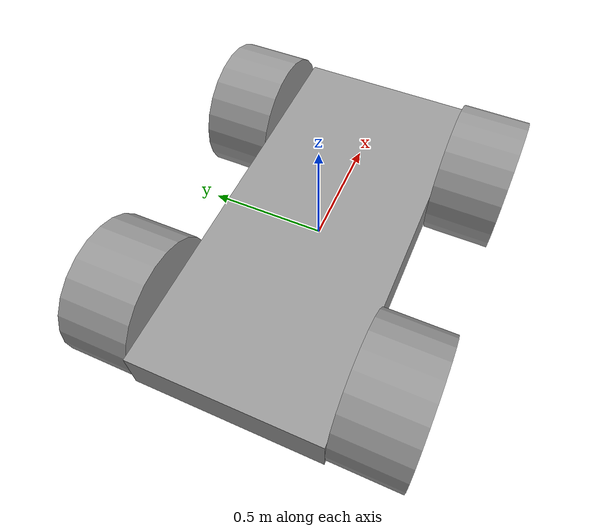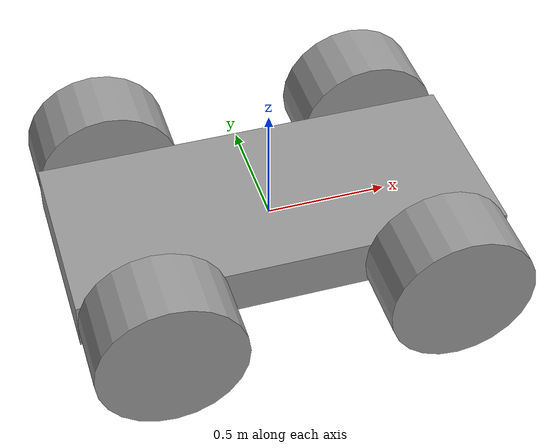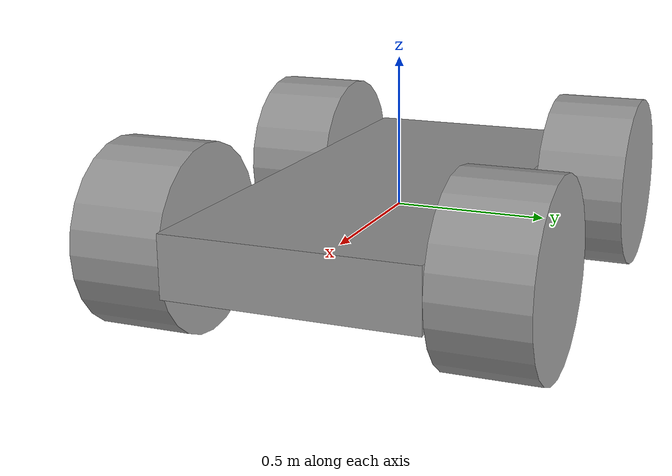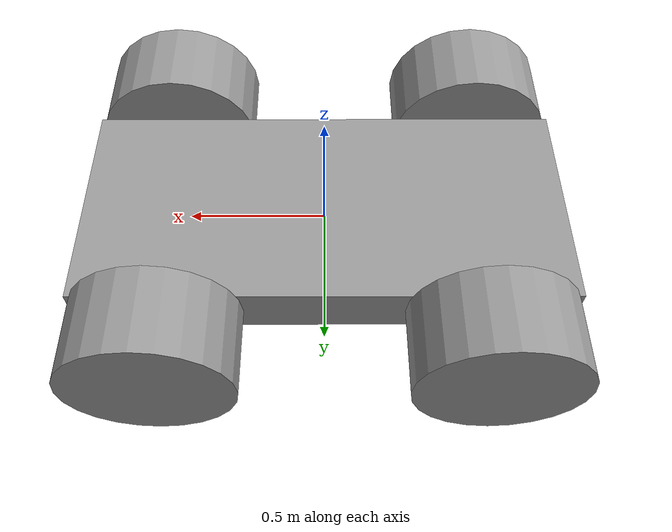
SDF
<?xml version='1.0'?>
<sdf version='1.7'>
  <model name='fourwheelsimplevehicle'>
    <link name='link_5'>
      <inertial>
        <mass>7.08275</mass>
        <inertia>
          <ixx>0.405716</ixx>
          <ixy>0</ixy>
          <ixz>0</ixz>
          <iyy>1.85289</iyy>
          <iyz>0</iyz>
          <izz>2.21139</izz>
        </inertia>
        <pose>0 0 0 0 -0 0</pose>
      </inertial>
      <pose>1e-06 -0 0 0 -0 0</pose>
      <gravity>1</gravity>
      <self_collide>0</self_collide>
      <kinematic>0</kinematic>
      <enable_wind>0</enable_wind>
      <visual name='visual'>
        <pose>0 0 0 0 -0 0</pose>
        <geometry>
          <box>
            <size>1.76047 0.804604 0.2</size>
          </box>
        </geometry>
        <material>
          <lighting>1</lighting>
          <script>
            <uri>file://media/materials/scripts/gazebo.material</uri>
            <name>Gazebo/Grey</name>
          </script>
          <shader type='pixel'>
            <normal_map>__default__</normal_map>
          </shader>
          <ambient>0.3 0.3 0.3 1</ambient>
          <diffuse>0.7 0.7 0.7 1</diffuse>
          <specular>0.01 0.01 0.01 1</specular>
          <emissive>0 0 0 1</emissive>
        </material>
        <transparency>0</transparency>
        <cast_shadows>1</cast_shadows>
      </visual>
      <collision name='collision'>
        <laser_retro>0</laser_retro>
        <max_contacts>10</max_contacts>
        <pose>0 0 0 0 -0 0</pose>
        <geometry>
          <box>
            <size>1.76047 0.804604 0.2</size>
          </box>
        </geometry>
        <surface>
          <friction>
            <ode>
              <mu>1</mu>
              <mu2>1</mu2>
              <fdir1>0 0 0</fdir1>
              <slip1>0</slip1>
              <slip2>0</slip2>
            </ode>
            <torsional>
              <coefficient>1</coefficient>
              <patch_radius>0</patch_radius>
              <surface_radius>0</surface_radius>
              <use_patch_radius>1</use_patch_radius>
              <ode>
                <slip>0</slip>
              </ode>
            </torsional>
          </friction>
          <bounce>
            <restitution_coefficient>0</restitution_coefficient>
            <threshold>1e+06</threshold>
          </bounce>
          <contact>
            <collide_without_contact>0</collide_without_contact>
            <collide_without_contact_bitmask>1</collide_without_contact_bitmask>
            <collide_bitmask>1</collide_bitmask>
            <ode>
              <soft_cfm>0</soft_cfm>
              <soft_erp>0.2</soft_erp>
              <kp>1e+13</kp>
              <kd>1</kd>
              <max_vel>0.01</max_vel>
              <min_depth>0</min_depth>
            </ode>
            <bullet>
              <split_impulse>1</split_impulse>
              <split_impulse_penetration_threshold>-0.01</split_impulse_penetration_threshold>
              <soft_cfm>0</soft_cfm>
              <soft_erp>0.2</soft_erp>
              <kp>1e+13</kp>
              <kd>1</kd>
            </bullet>
          </contact>
        </surface>
      </collision>
    </link>
    <link name='link_6'>
      <inertial>
        <mass>1</mass>
        <inertia>
          <ixx>0.145833</ixx>
          <ixy>0</ixy>
          <ixz>0</ixz>
          <iyy>0.145833</iyy>
          <iyz>0</iyz>
          <izz>0.125</izz>
        </inertia>
        <pose>0 0 0 0 -0 0</pose>
      </inertial>
      <pose>-0.580238 0.552351 0 1.57096 -0 0</pose>
      <gravity>1</gravity>
      <self_collide>0</self_collide>
      <kinematic>0</kinematic>
      <enable_wind>0</enable_wind>
      <visual name='visual'>
        <pose>0 0 0 0 -0 0</pose>
        <geometry>
          <cylinder>
            <radius>0.3</radius>
            <length>0.3</length>
          </cylinder>
        </geometry>
        <material>
          <lighting>1</lighting>
          <script>
            <uri>file://media/materials/scripts/gazebo.material</uri>
            <name>Gazebo/Grey</name>
          </script>
          <shader type='pixel'>
            <normal_map>__default__</normal_map>
          </shader>
          <ambient>0.3 0.3 0.3 1</ambient>
          <diffuse>0.7 0.7 0.7 1</diffuse>
          <specular>0.01 0.01 0.01 1</specular>
          <emissive>0 0 0 1</emissive>
        </material>
        <transparency>0</transparency>
        <cast_shadows>1</cast_shadows>
      </visual>
      <collision name='collision'>
        <laser_retro>0</laser_retro>
        <max_contacts>10</max_contacts>
        <pose>0 0 0 0 -0 0</pose>
        <geometry>
          <cylinder>
            <radius>0.3</radius>
            <length>0.3</length>
          </cylinder>
        </geometry>
        <surface>
          <friction>
            <ode>
              <mu>1</mu>
              <mu2>1</mu2>
              <fdir1>0 0 0</fdir1>
              <slip1>0</slip1>
              <slip2>0</slip2>
            </ode>
            <torsional>
              <coefficient>1</coefficient>
              <patch_radius>0</patch_radius>
              <surface_radius>0</surface_radius>
              <use_patch_radius>1</use_patch_radius>
              <ode>
                <slip>0</slip>
              </ode>
            </torsional>
          </friction>
          <bounce>
            <restitution_coefficient>0</restitution_coefficient>
            <threshold>1e+06</threshold>
          </bounce>
          <contact>
            <collide_without_contact>0</collide_without_contact>
            <collide_without_contact_bitmask>1</collide_without_contact_bitmask>
            <collide_bitmask>1</collide_bitmask>
            <ode>
              <soft_cfm>0</soft_cfm>
              <soft_erp>0.2</soft_erp>
              <kp>1e+13</kp>
              <kd>1</kd>
              <max_vel>0.01</max_vel>
              <min_depth>0</min_depth>
            </ode>
            <bullet>
              <split_impulse>1</split_impulse>
              <split_impulse_penetration_threshold>-0.01</split_impulse_penetration_threshold>
              <soft_cfm>0</soft_cfm>
              <soft_erp>0.2</soft_erp>
              <kp>1e+13</kp>
              <kd>1</kd>
            </bullet>
          </contact>
        </surface>
      </collision>
    </link>
    <link name='link_6_clone'>
      <inertial>
        <mass>1</mass>
        <inertia>
          <ixx>0.145833</ixx>
          <ixy>0</ixy>
          <ixz>0</ixz>
          <iyy>0.145833</iyy>
          <iyz>0</iyz>
          <izz>0.125</izz>
        </inertia>
        <pose>0 0 0 0 -0 0</pose>
      </inertial>
      <pose>-0.580238 -0.552351 0 1.57096 -0 0</pose>
      <gravity>1</gravity>
      <self_collide>0</self_collide>
      <kinematic>0</kinematic>
      <enable_wind>0</enable_wind>
      <visual name='visual'>
        <pose>0 0 0 0 -0 0</pose>
        <geometry>
          <cylinder>
            <radius>0.3</radius>
            <length>0.3</length>
          </cylinder>
        </geometry>
        <material>
          <lighting>1</lighting>
          <script>
            <uri>file://media/materials/scripts/gazebo.material</uri>
            <name>Gazebo/Grey</name>
          </script>
          <shader type='pixel'>
            <normal_map>__default__</normal_map>
          </shader>
          <ambient>0.3 0.3 0.3 1</ambient>
          <diffuse>0.7 0.7 0.7 1</diffuse>
          <specular>0.01 0.01 0.01 1</specular>
          <emissive>0 0 0 1</emissive>
        </material>
        <transparency>0</transparency>
        <cast_shadows>1</cast_shadows>
      </visual>
      <collision name='collision'>
        <laser_retro>0</laser_retro>
        <max_contacts>10</max_contacts>
        <pose>0 0 0 0 -0 0</pose>
        <geometry>
          <cylinder>
            <radius>0.3</radius>
            <length>0.3</length>
          </cylinder>
        </geometry>
        <surface>
          <friction>
            <ode>
              <mu>1</mu>
              <mu2>1</mu2>
              <fdir1>0 0 0</fdir1>
              <slip1>0</slip1>
              <slip2>0</slip2>
            </ode>
            <torsional>
              <coefficient>1</coefficient>
              <patch_radius>0</patch_radius>
              <surface_radius>0</surface_radius>
              <use_patch_radius>1</use_patch_radius>
              <ode>
                <slip>0</slip>
              </ode>
            </torsional>
          </friction>
          <bounce>
            <restitution_coefficient>0</restitution_coefficient>
            <threshold>1e+06</threshold>
          </bounce>
          <contact>
            <collide_without_contact>0</collide_without_contact>
            <collide_without_contact_bitmask>1</collide_without_contact_bitmask>
            <collide_bitmask>1</collide_bitmask>
            <ode>
              <soft_cfm>0</soft_cfm>
              <soft_erp>0.2</soft_erp>
              <kp>1e+13</kp>
              <kd>1</kd>
              <max_vel>0.01</max_vel>
              <min_depth>0</min_depth>
            </ode>
            <bullet>
              <split_impulse>1</split_impulse>
              <split_impulse_penetration_threshold>-0.01</split_impulse_penetration_threshold>
              <soft_cfm>0</soft_cfm>
              <soft_erp>0.2</soft_erp>
              <kp>1e+13</kp>
              <kd>1</kd>
            </bullet>
          </contact>
        </surface>
      </collision>
    </link>
    <link name='link_6_clone_clone'>
      <inertial>
        <mass>1</mass>
        <inertia>
          <ixx>0.145833</ixx>
          <ixy>0</ixy>
          <ixz>0</ixz>
          <iyy>0.145833</iyy>
          <iyz>0</iyz>
          <izz>0.125</izz>
        </inertia>
        <pose>0 0 0 0 -0 0</pose>
      </inertial>
      <pose>0.58024 0.552351 0 1.57096 -0 0</pose>
      <gravity>1</gravity>
      <self_collide>0</self_collide>
      <kinematic>0</kinematic>
      <enable_wind>0</enable_wind>
      <visual name='visual'>
        <pose>0 0 0 0 -0 0</pose>
        <geometry>
          <cylinder>
            <radius>0.3</radius>
            <length>0.3</length>
          </cylinder>
        </geometry>
        <material>
          <lighting>1</lighting>
          <script>
            <uri>file://media/materials/scripts/gazebo.material</uri>
            <name>Gazebo/Grey</name>
          </script>
          <shader type='pixel'>
            <normal_map>__default__</normal_map>
          </shader>
          <ambient>0.3 0.3 0.3 1</ambient>
          <diffuse>0.7 0.7 0.7 1</diffuse>
          <specular>0.01 0.01 0.01 1</specular>
          <emissive>0 0 0 1</emissive>
        </material>
        <transparency>0</transparency>
        <cast_shadows>1</cast_shadows>
      </visual>
      <collision name='collision'>
        <laser_retro>0</laser_retro>
        <max_contacts>10</max_contacts>
        <pose>0 0 0 0 -0 0</pose>
        <geometry>
          <cylinder>
            <radius>0.3</radius>
            <length>0.3</length>
          </cylinder>
        </geometry>
        <surface>
          <friction>
            <ode>
              <mu>1</mu>
              <mu2>1</mu2>
              <fdir1>0 0 0</fdir1>
              <slip1>0</slip1>
              <slip2>0</slip2>
            </ode>
            <torsional>
              <coefficient>1</coefficient>
              <patch_radius>0</patch_radius>
              <surface_radius>0</surface_radius>
              <use_patch_radius>1</use_patch_radius>
              <ode>
                <slip>0</slip>
              </ode>
            </torsional>
          </friction>
          <bounce>
            <restitution_coefficient>0</restitution_coefficient>
            <threshold>1e+06</threshold>
          </bounce>
          <contact>
            <collide_without_contact>0</collide_without_contact>
            <collide_without_contact_bitmask>1</collide_without_contact_bitmask>
            <collide_bitmask>1</collide_bitmask>
            <ode>
              <soft_cfm>0</soft_cfm>
              <soft_erp>0.2</soft_erp>
              <kp>1e+13</kp>
              <kd>1</kd>
              <max_vel>0.01</max_vel>
              <min_depth>0</min_depth>
            </ode>
            <bullet>
              <split_impulse>1</split_impulse>
              <split_impulse_penetration_threshold>-0.01</split_impulse_penetration_threshold>
              <soft_cfm>0</soft_cfm>
              <soft_erp>0.2</soft_erp>
              <kp>1e+13</kp>
              <kd>1</kd>
            </bullet>
          </contact>
        </surface>
      </collision>
    </link>
    <link name='link_6_clone_clone_clone'>
      <inertial>
        <mass>1</mass>
        <inertia>
          <ixx>0.145833</ixx>
          <ixy>0</ixy>
          <ixz>0</ixz>
          <iyy>0.145833</iyy>
          <iyz>0</iyz>
          <izz>0.125</izz>
        </inertia>
        <pose>0 0 0 0 -0 0</pose>
      </inertial>
      <pose>0.58024 -0.552351 0 1.57096 -0 0</pose>
      <gravity>1</gravity>
      <self_collide>0</self_collide>
      <kinematic>0</kinematic>
      <enable_wind>0</enable_wind>
      <visual name='visual'>
        <pose>0 0 0 0 -0 0</pose>
        <geometry>
          <cylinder>
            <radius>0.3</radius>
            <length>0.3</length>
          </cylinder>
        </geometry>
        <material>
          <lighting>1</lighting>
          <script>
            <uri>file://media/materials/scripts/gazebo.material</uri>
            <name>Gazebo/Grey</name>
          </script>
          <shader type='pixel'>
            <normal_map>__default__</normal_map>
          </shader>
          <ambient>0.3 0.3 0.3 1</ambient>
          <diffuse>0.7 0.7 0.7 1</diffuse>
          <specular>0.01 0.01 0.01 1</specular>
          <emissive>0 0 0 1</emissive>
        </material>
        <transparency>0</transparency>
        <cast_shadows>1</cast_shadows>
      </visual>
      <collision name='collision'>
        <laser_retro>0</laser_retro>
        <max_contacts>10</max_contacts>
        <pose>0 0 0 0 -0 0</pose>
        <geometry>
          <cylinder>
            <radius>0.3</radius>
            <length>0.3</length>
          </cylinder>
        </geometry>
        <surface>
          <friction>
            <ode>
              <mu>1</mu>
              <mu2>1</mu2>
              <fdir1>0 0 0</fdir1>
              <slip1>0</slip1>
              <slip2>0</slip2>
            </ode>
            <torsional>
              <coefficient>1</coefficient>
              <patch_radius>0</patch_radius>
              <surface_radius>0</surface_radius>
              <use_patch_radius>1</use_patch_radius>
              <ode>
                <slip>0</slip>
              </ode>
            </torsional>
          </friction>
          <bounce>
            <restitution_coefficient>0</restitution_coefficient>
            <threshold>1e+06</threshold>
          </bounce>
          <contact>
            <collide_without_contact>0</collide_without_contact>
            <collide_without_contact_bitmask>1</collide_without_contact_bitmask>
            <collide_bitmask>1</collide_bitmask>
            <ode>
              <soft_cfm>0</soft_cfm>
              <soft_erp>0.2</soft_erp>
              <kp>1e+13</kp>
              <kd>1</kd>
              <max_vel>0.01</max_vel>
              <min_depth>0</min_depth>
            </ode>
            <bullet>
              <split_impulse>1</split_impulse>
              <split_impulse_penetration_threshold>-0.01</split_impulse_penetration_threshold>
              <soft_cfm>0</soft_cfm>
              <soft_erp>0.2</soft_erp>
              <kp>1e+13</kp>
              <kd>1</kd>
            </bullet>
          </contact>
        </surface>
      </collision>
    </link>
    <joint name='link_5_JOINT_10' type='revolute'>
      <parent>link_5</parent>
      <child>link_6_clone_clone_clone</child>
      <pose>0 0 0 0 -0 0</pose>
      <axis>
        <xyz>1 0 0</xyz>
        <limit>
          <lower>-1.79769e+308</lower>
          <upper>1.79769e+308</upper>
          <effort>-1</effort>
          <velocity>-1</velocity>
        </limit>
        <dynamics>
          <spring_reference>0</spring_reference>
          <spring_stiffness>0</spring_stiffness>
          <damping>0</damping>
        </dynamics>
      </axis>
      <physics>
        <ode>
          <limit>
            <cfm>0</cfm>
            <erp>0.2</erp>
          </limit>
          <suspension>
            <cfm>0</cfm>
            <erp>0.2</erp>
          </suspension>
        </ode>
      </physics>
    </joint>
    <joint name='link_5_JOINT_6' type='revolute'>
      <parent>link_5</parent>
      <child>link_6</child>
      <pose>0 0 0 0 -0 0</pose>
      <axis>
        <xyz>0 0 1</xyz>
        <limit>
          <lower>-1.79769e+308</lower>
          <upper>1.79769e+308</upper>
          <effort>-1</effort>
          <velocity>-1</velocity>
        </limit>
        <dynamics>
          <spring_reference>0</spring_reference>
          <spring_stiffness>0</spring_stiffness>
          <damping>0</damping>
          <friction>0</friction>
        </dynamics>
      </axis>
      <physics>
        <ode>
          <limit>
            <cfm>0</cfm>
            <erp>0.2</erp>
          </limit>
          <suspension>
            <cfm>0</cfm>
            <erp>0.2</erp>
          </suspension>
        </ode>
      </physics>
    </joint>
    <joint name='link_5_JOINT_7' type='revolute'>
      <parent>link_5</parent>
      <child>link_6_clone</child>
      <pose>0 0 0 0 -0 0</pose>
      <axis>
        <xyz>0 0 1</xyz>
        <limit>
          <lower>-1.79769e+308</lower>
          <upper>1.79769e+308</upper>
          <effort>-1</effort>
          <velocity>-1</velocity>
        </limit>
        <dynamics>
          <spring_reference>0</spring_reference>
          <spring_stiffness>0</spring_stiffness>
          <damping>0</damping>
          <friction>0</friction>
        </dynamics>
      </axis>
      <physics>
        <ode>
          <limit>
            <cfm>0</cfm>
            <erp>0.2</erp>
          </limit>
          <suspension>
            <cfm>0</cfm>
            <erp>0.2</erp>
          </suspension>
        </ode>
      </physics>
    </joint>
    <joint name='link_5_JOINT_9' type='revolute'>
      <parent>link_5</parent>
      <child>link_6_clone_clone</child>
      <pose>0 0 0 0 -0 0</pose>
      <axis>
        <xyz>1 0 0</xyz>
        <limit>
          <lower>-1.79769e+308</lower>
          <upper>1.79769e+308</upper>
          <effort>-1</effort>
          <velocity>-1</velocity>
        </limit>
        <dynamics>
          <spring_reference>0</spring_reference>
          <spring_stiffness>0</spring_stiffness>
          <damping>0</damping>
        </dynamics>
      </axis>
      <physics>
        <ode>
          <limit>
            <cfm>0</cfm>
            <erp>0.2</erp>
          </limit>
          <suspension>
            <cfm>0</cfm>
            <erp>0.2</erp>
          </suspension>
        </ode>
      </physics>
    </joint>
    <static>0</static>
    <allow_auto_disable>1</allow_auto_disable>
  </model>
</sdf>
